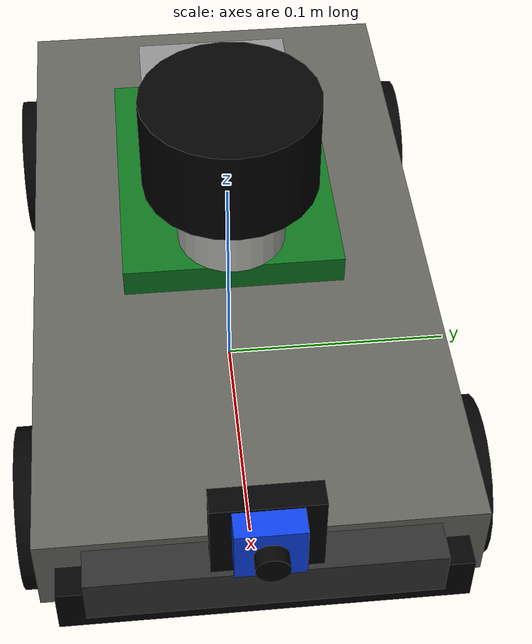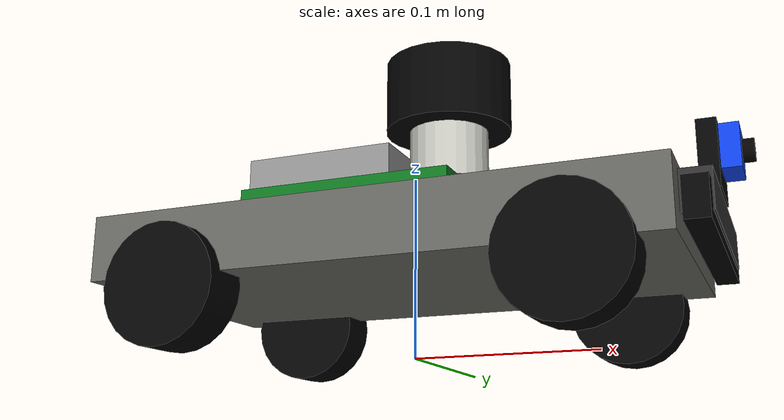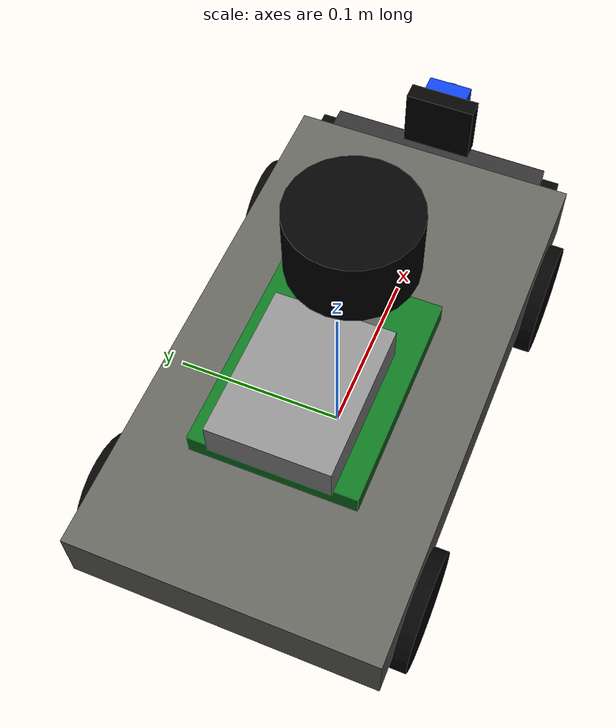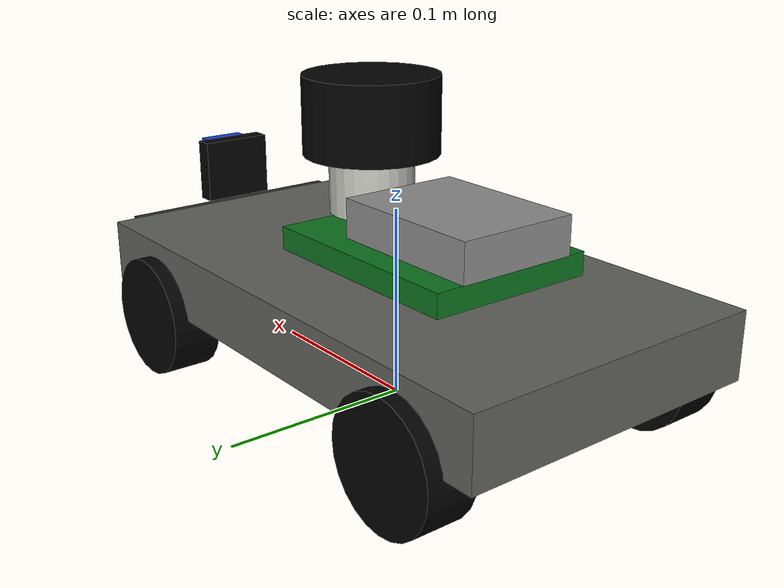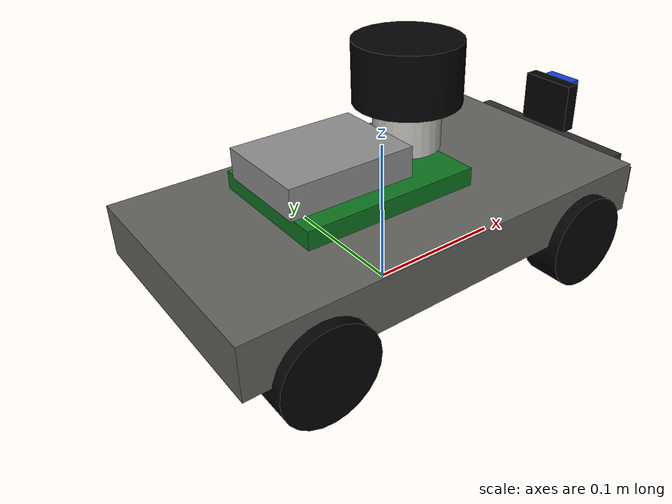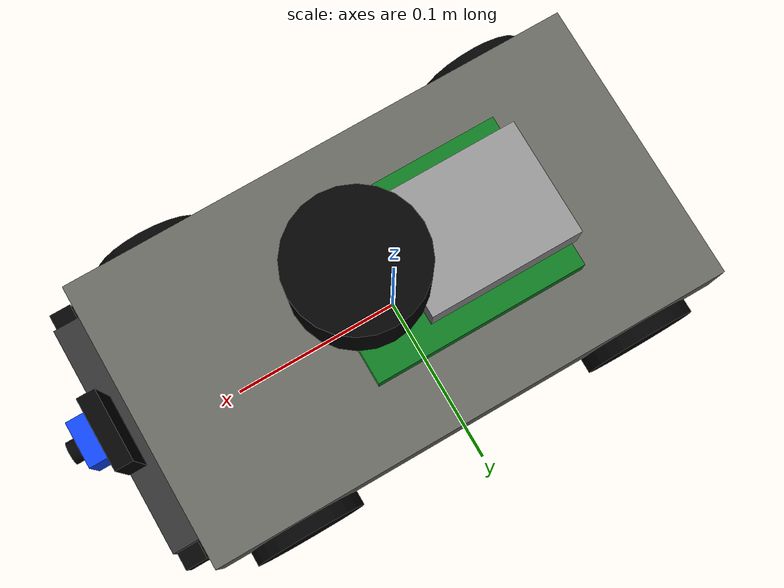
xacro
<?xml version="1.0"?>
<robot name="jetracer" xmlns:xacro="http://www.ros.org/wiki/xacro">

  <!-- Coordinate convention: x forward, y left, z up -->

  <!-- Dimensions -->

  <xacro:property name="body_length" value="0.300"/>
  <xacro:property name="body_width"  value="0.165"/>
  <xacro:property name="body_height" value="0.035"/>

  <xacro:property name="wheelbase" value="0.205"/>
  <xacro:property name="track" value="0.155"/>

  <xacro:property name="wheel_radius" value="0.032"/>
  <xacro:property name="wheel_width" value="0.026"/>

  <xacro:property name="base_z" value="0.055"/>

  <xacro:property name="front_axle_x" value="${wheelbase / 2.0}"/>
  <xacro:property name="rear_axle_x" value="${-wheelbase / 2.0}"/>
  <xacro:property name="left_wheel_y" value="${track / 2.0}"/>
  <xacro:property name="right_wheel_y" value="${-track / 2.0}"/>
  <xacro:property name="wheel_joint_z" value="${wheel_radius - base_z}"/>

  <xacro:property name="lidar_radius" value="0.035"/>
  <xacro:property name="lidar_height" value="0.040"/>

  <xacro:property name="camera_w" value="0.025"/>
  <xacro:property name="camera_h" value="0.023"/>
  <xacro:property name="camera_d" value="0.010"/>

  <!-- Materials -->

  <material name="black">
    <color rgba="0.01 0.01 0.01 1"/>
  </material>

  <material name="dark_grey">
    <color rgba="0.18 0.18 0.18 1"/>
  </material>

  <material name="mid_grey">
    <color rgba="0.38 0.38 0.36 1"/>
  </material>

  <material name="light_grey">
    <color rgba="0.75 0.75 0.72 1"/>
  </material>

  <material name="blue">
    <color rgba="0.05 0.25 0.90 1"/>
  </material>

  <material name="green">
    <color rgba="0.05 0.45 0.12 1"/>
  </material>

  <material name="metal">
    <color rgba="0.55 0.55 0.55 1"/>
  </material>

  <!-- Inertia helpers -->

  <xacro:macro name="box_inertia" params="m x y z">
    <inertial>
      <mass value="${m}"/>
      <origin xyz="0 0 0" rpy="0 0 0"/>
      <inertia
        ixx="${m * (y*y + z*z) / 12.0}"
        ixy="0"
        ixz="0"
        iyy="${m * (x*x + z*z) / 12.0}"
        iyz="0"
        izz="${m * (x*x + y*y) / 12.0}"/>
    </inertial>
  </xacro:macro>

  <xacro:macro name="cylinder_inertia" params="m r l">
    <inertial>
      <mass value="${m}"/>
      <origin xyz="0 0 0" rpy="0 0 0"/>
      <inertia
        ixx="${m * (3*r*r + l*l) / 12.0}"
        ixy="0"
        ixz="0"
        iyy="${m * (3*r*r + l*l) / 12.0}"
        iyz="0"
        izz="${m * r*r / 2.0}"/>
    </inertial>
  </xacro:macro>

  <!-- Base frames -->

  <link name="base_footprint"/>

  <joint name="base_footprint_to_base_link" type="fixed">
    <parent link="base_footprint"/>
    <child link="base_link"/>
    <origin xyz="0 0 ${base_z}" rpy="0 0 0"/>
  </joint>

  <!-- Main physical base -->
  <link name="base_link">
    <visual>
      <origin xyz="0 0 0" rpy="0 0 0"/>
      <geometry>
        <box size="${body_length} ${body_width} ${body_height}"/>
      </geometry>
      <material name="mid_grey"/>
    </visual>

    <collision>
      <origin xyz="0 0 0" rpy="0 0 0"/>
      <geometry>
        <box size="${body_length} ${body_width} ${body_height}"/>
      </geometry>
    </collision>

    <xacro:box_inertia m="1.2" x="${body_length}" y="${body_width}" z="${body_height}"/>
  </link>

  <!-- Front nose -->
  <joint name="front_nose_joint" type="fixed">
    <parent link="base_link"/>
    <child link="front_nose"/>
    <origin xyz="0.135 0 0.004" rpy="0 0 0"/>
  </joint>

  <link name="front_nose">
    <visual>
      <origin xyz="0 0 0" rpy="0 0 0"/>
      <geometry>
        <box size="0.060 0.130 0.020"/>
      </geometry>
      <material name="dark_grey"/>
    </visual>
    <collision>
      <origin xyz="0 0 0" rpy="0 0 0"/>
      <geometry>
        <box size="0.060 0.130 0.020"/>
      </geometry>
    </collision>
    <xacro:box_inertia m="0.08" x="0.060" y="0.130" z="0.020"/>
  </link>

  <!-- Upper electronics board -->
  <joint name="electronics_board_joint" type="fixed">
    <parent link="base_link"/>
    <child link="electronics_board"/>
    <origin xyz="-0.025 0 0.030" rpy="0 0 0"/>
  </joint>

  <link name="electronics_board">
    <visual>
      <origin xyz="0 0 0" rpy="0 0 0"/>
      <geometry>
        <box size="0.120 0.090 0.012"/>
      </geometry>
      <material name="green"/>
    </visual>
    <collision>
      <origin xyz="0 0 0" rpy="0 0 0"/>
      <geometry>
        <box size="0.120 0.090 0.012"/>
      </geometry>
    </collision>
    <xacro:box_inertia m="0.15" x="0.120" y="0.090" z="0.012"/>
  </link>

  <!-- Jetson/computer block -->
  <joint name="computer_module_joint" type="fixed">
    <parent link="base_link"/>
    <child link="computer_module"/>
    <origin xyz="-0.045 0 0.047" rpy="0 0 0"/>
  </joint>

  <link name="computer_module">
    <visual>
      <origin xyz="0 0 0" rpy="0 0 0"/>
      <geometry>
        <box size="0.085 0.065 0.020"/>
      </geometry>
      <material name="metal"/>
    </visual>
    <collision>
      <origin xyz="0 0 0" rpy="0 0 0"/>
      <geometry>
        <box size="0.085 0.065 0.020"/>
      </geometry>
    </collision>
    <xacro:box_inertia m="0.20" x="0.085" y="0.065" z="0.020"/>
  </link>

  <!-- Front bumper -->
  <joint name="front_bumper_joint" type="fixed">
    <parent link="base_link"/>
    <child link="front_bumper"/>
    <origin xyz="0.158 0 -0.002" rpy="0 0 0"/>
  </joint>

  <link name="front_bumper">
    <visual>
      <origin xyz="0 0 0" rpy="0 0 0"/>
      <geometry>
        <box size="0.012 0.150 0.020"/>
      </geometry>
      <material name="black"/>
    </visual>
    <collision>
      <origin xyz="0 0 0" rpy="0 0 0"/>
      <geometry>
        <box size="0.012 0.150 0.020"/>
      </geometry>
    </collision>
    <xacro:box_inertia m="0.04" x="0.012" y="0.150" z="0.020"/>
  </link>

  <!-- Wheels -->

  <xacro:macro name="wheel" params="name parent x y z">
    <joint name="${name}_wheel_joint" type="continuous">
      <parent link="${parent}"/>
      <child link="${name}_wheel"/>
      <origin xyz="${x} ${y} ${z}" rpy="0 0 0"/>
      <axis xyz="0 1 0"/>
      <limit effort="8.0" velocity="80.0"/>
      <dynamics damping="0.02" friction="0.01"/>
    </joint>

    <link name="${name}_wheel">
      <visual>
        <!-- Cylinder default axis is Z. Rotate so cylinder axis becomes Y. -->
        <origin xyz="0 0 0" rpy="1.57079632679 0 0"/>
        <geometry>
          <cylinder radius="${wheel_radius}" length="${wheel_width}"/>
        </geometry>
        <material name="black"/>
      </visual>

      <collision>
        <origin xyz="0 0 0" rpy="1.57079632679 0 0"/>
        <geometry>
          <cylinder radius="${wheel_radius}" length="${wheel_width}"/>
        </geometry>
      </collision>

      <xacro:cylinder_inertia m="0.07" r="${wheel_radius}" l="${wheel_width}"/>
    </link>

    <joint name="${name}_hub_joint" type="fixed">
      <parent link="${name}_wheel"/>
      <child link="${name}_hub"/>
      <origin xyz="0 0 0" rpy="0 0 0"/>
    </joint>

    <link name="${name}_hub">
      <visual>
        <origin xyz="0 0 0" rpy="1.57079632679 0 0"/>
        <geometry>
          <cylinder radius="${wheel_radius * 0.45}" length="0.004"/>
        </geometry>
        <material name="metal"/>
      </visual>
      <collision>
        <origin xyz="0 0 0" rpy="1.57079632679 0 0"/>
        <geometry>
          <cylinder radius="${wheel_radius * 0.45}" length="0.004"/>
        </geometry>
      </collision>
      <xacro:cylinder_inertia m="0.01" r="${wheel_radius * 0.45}" l="0.004"/>
    </link>
  </xacro:macro>

  <xacro:macro name="front_steered_wheel" params="prefix y">
    <joint name="${prefix}_steering_joint" type="revolute">
      <parent link="base_link"/>
      <child link="${prefix}_steering_link"/>
      <origin xyz="${front_axle_x} ${y} ${wheel_joint_z}" rpy="0 0 0"/>
      <axis xyz="0 0 1"/>
      <limit lower="-0.55" upper="0.55" effort="5.0" velocity="5.0"/>
      <dynamics damping="0.05" friction="0.02"/>
    </joint>

    <link name="${prefix}_steering_link">
      <visual>
        <origin xyz="0 0 0.008" rpy="0 0 0"/>
        <geometry>
          <box size="0.026 0.014 0.035"/>
        </geometry>
        <material name="metal"/>
      </visual>

      <collision>
        <origin xyz="0 0 0.008" rpy="0 0 0"/>
        <geometry>
          <box size="0.026 0.014 0.035"/>
        </geometry>
      </collision>

      <xacro:box_inertia m="0.04" x="0.026" y="0.014" z="0.035"/>
    </link>

    <xacro:wheel name="${prefix}" parent="${prefix}_steering_link" x="0" y="0" z="0"/>
  </xacro:macro>

  <xacro:front_steered_wheel prefix="front_left" y="${left_wheel_y}"/>
  <xacro:front_steered_wheel prefix="front_right" y="${right_wheel_y}"/>

  <xacro:wheel
    name="rear_left"
    parent="base_link"
    x="${rear_axle_x}"
    y="${left_wheel_y}"
    z="${wheel_joint_z}"/>

  <xacro:wheel
    name="rear_right"
    parent="base_link"
    x="${rear_axle_x}"
    y="${right_wheel_y}"
    z="${wheel_joint_z}"/>

  <!-- Lidar -->

  <joint name="lidar_stand_joint" type="fixed">
    <parent link="base_link"/>
    <child link="lidar_stand"/>
    <origin xyz="0.020 0 0.055" rpy="0 0 0"/>
  </joint>

  <link name="lidar_stand">
    <visual>
      <origin xyz="0 0 0" rpy="0 0 0"/>
      <geometry>
        <cylinder radius="0.022" length="0.030"/>
      </geometry>
      <material name="light_grey"/>
    </visual>
    <collision>
      <origin xyz="0 0 0" rpy="0 0 0"/>
      <geometry>
        <cylinder radius="0.022" length="0.030"/>
      </geometry>
    </collision>
    <xacro:cylinder_inertia m="0.04" r="0.022" l="0.030"/>
  </link>

  <joint name="laser_joint" type="fixed">
    <parent link="lidar_stand"/>
    <child link="laser_frame"/>
    <origin xyz="0 0 0.035" rpy="0 0 0"/>
  </joint>

  <link name="laser_frame">
    <visual>
      <origin xyz="0 0 0" rpy="0 0 0"/>
      <geometry>
        <cylinder radius="${lidar_radius}" length="${lidar_height}"/>
      </geometry>
      <material name="black"/>
    </visual>

    <collision>
      <origin xyz="0 0 0" rpy="0 0 0"/>
      <geometry>
        <cylinder radius="${lidar_radius}" length="${lidar_height}"/>
      </geometry>
    </collision>

    <xacro:cylinder_inertia m="0.17" r="${lidar_radius}" l="${lidar_height}"/>
  </link>

  <joint name="laser_scan_joint" type="fixed">
    <parent link="laser_frame"/>
    <child link="laser"/>
    <origin xyz="0 0 ${lidar_height / 2.0}" rpy="0 0 0"/>
  </joint>

  <link name="laser"/>

  <!-- Camera -->

  <joint name="camera_bracket_joint" type="fixed">
    <parent link="base_link"/>
    <child link="camera_bracket"/>
    <origin xyz="0.160 0 0.035" rpy="0 0 0"/>
  </joint>

  <link name="camera_bracket">
    <visual>
      <origin xyz="0 0 0" rpy="0 0 0"/>
      <geometry>
        <box size="0.010 0.040 0.035"/>
      </geometry>
      <material name="black"/>
    </visual>
    <collision>
      <origin xyz="0 0 0" rpy="0 0 0"/>
      <geometry>
        <box size="0.010 0.040 0.035"/>
      </geometry>
    </collision>
    <xacro:box_inertia m="0.02" x="0.010" y="0.040" z="0.035"/>
  </link>

  <joint name="camera_joint" type="fixed">
    <parent link="camera_bracket"/>
    <child link="camera_link"/>
    <origin xyz="0.010 0 0.005" rpy="0 0 0"/>
  </joint>

  <link name="camera_link">
    <visual>
      <origin xyz="0 0 0" rpy="0 0 0"/>
      <geometry>
        <box size="${camera_d} ${camera_w} ${camera_h}"/>
      </geometry>
      <material name="blue"/>
    </visual>

    <collision>
      <origin xyz="0 0 0" rpy="0 0 0"/>
      <geometry>
        <box size="${camera_d} ${camera_w} ${camera_h}"/>
      </geometry>
    </collision>

    <xacro:box_inertia m="0.015" x="${camera_d}" y="${camera_w}" z="${camera_h}"/>
  </link>

  <joint name="camera_lens_joint" type="fixed">
    <parent link="camera_link"/>
    <child link="camera_lens"/>
    <origin xyz="0.008 0 0" rpy="0 1.57079632679 0"/>
  </joint>

  <link name="camera_lens">
    <visual>
      <origin xyz="0 0 0" rpy="0 0 0"/>
      <geometry>
        <cylinder radius="0.006" length="0.006"/>
      </geometry>
      <material name="black"/>
    </visual>
    <collision>
      <origin xyz="0 0 0" rpy="0 0 0"/>
      <geometry>
        <cylinder radius="0.006" length="0.006"/>
      </geometry>
    </collision>
    <xacro:cylinder_inertia m="0.003" r="0.006" l="0.006"/>
  </link>

  <joint name="camera_optical_joint" type="fixed">
    <parent link="camera_link"/>
    <child link="camera_optical_frame"/>
    <origin xyz="${camera_d / 2.0} 0 0" rpy="-1.57079632679 0 -1.57079632679"/>
  </joint>

  <link name="camera_optical_frame"/>

</robot>
